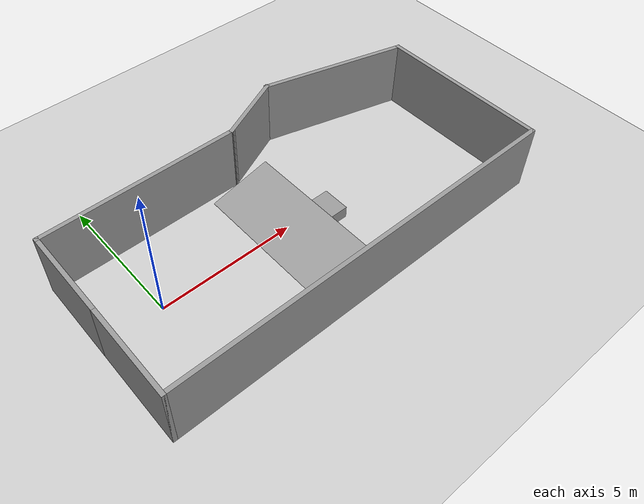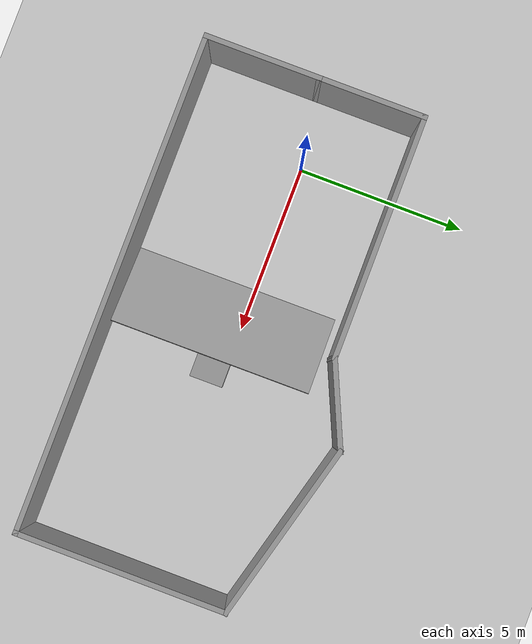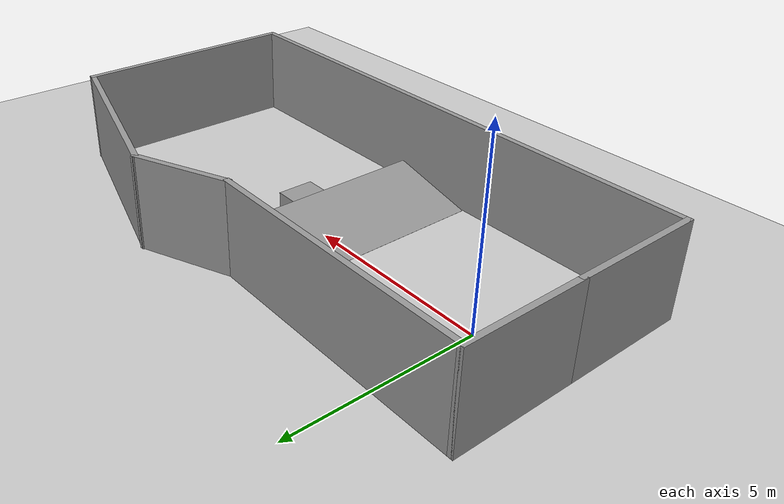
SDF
<sdf version="1.7">
 <world name="default">
  <light name="sun" type="directional">
   <pose>0 0 10 0 -0 0</pose>
   <diffuse>0.8 0.8 0.8 1</diffuse>
   <specular>0.2 0.2 0.2 1</specular>
   <attenuation>
    <range>1000</range>
    <constant>0.9</constant>
    <linear>0.01</linear>
    <quadratic>0.001</quadratic>
   </attenuation>
   <direction>-0.5 0.1 -0.9</direction>
   <spot><inner_angle>0</inner_angle><outer_angle>0</outer_angle><falloff>0</falloff></spot>
  </light>
  <model name="ground_plane">
   <static>1</static>
   <link name="link">
    <collision name="collision">
     <geometry><plane><normal>0 0 1</normal><size>100 100</size></plane></geometry>
     <surface><friction><ode><mu>100</mu><mu2>50</mu2></ode></friction></surface>
    </collision>
    <visual name="visual">
     <cast_shadows>0</cast_shadows>
     <geometry><plane><normal>0 0 1</normal><size>100 100</size></plane></geometry>
     <material>
      <script><uri>file://media/materials/scripts/gazebo.material</uri><name>Gazebo/Grey</name></script>
     </material>
    </visual>
   </link>
  </model>
  <gravity>0 0 -9.8</gravity>
  <magnetic_field>6e-06 2.3e-05 -4.2e-05</magnetic_field>
  <atmosphere type="adiabatic"/>
  <physics type="ode">
   <max_step_size>0.001</max_step_size>
   <real_time_factor>1</real_time_factor>
   <real_time_update_rate>1000</real_time_update_rate>
  </physics>
  <scene><ambient>0.4 0.4 0.4 1</ambient><background>0.7 0.7 0.7 1</background><shadows>1</shadows></scene>
  <audio><device>default</device></audio>
  <spherical_coordinates>
   <surface_model>EARTH_WGS84</surface_model>
   <latitude_deg>0</latitude_deg>
   <longitude_deg>0</longitude_deg>
   <elevation>0</elevation>
   <heading_deg>0</heading_deg>
  </spherical_coordinates>
  <model name="testwall">
   <pose>5.16598 0.0615 0 0 -0 0</pose>
   <link name="Wall_0">
    <collision name="Wall_0_Collision">
     <geometry><box><size>3.25 0.15 2.5</size></box></geometry>
     <pose>0 0 1.25 0 -0 0</pose>
    </collision>
    <visual name="Wall_0_Visual">
     <pose>0 0 1.25 0 -0 0</pose>
     <geometry><box><size>3.25 0.15 2.5</size></box></geometry>
     <material>
      <script><uri>file://media/materials/scripts/gazebo.material</uri><name>Gazebo/Grey</name></script>
      <ambient>1 1 1 1</ambient>
     </material>
     <meta><layer>0</layer></meta>
    </visual>
    <pose>-7.30843 1.14567 0 0 -0 1.5708</pose>
   </link>
   <link name="Wall_1">
    <collision name="Wall_1_Collision">
     <geometry><box><size>7.25 0.15 2.5</size></box></geometry>
     <pose>0 0 1.25 0 -0 0</pose>
    </collision>
    <visual name="Wall_1_Visual">
     <pose>0 0 1.25 0 -0 0</pose>
     <geometry><box><size>7.25 0.15 2.5</size></box></geometry>
     <material>
      <script><uri>file://media/materials/scripts/gazebo.material</uri><name>Gazebo/Grey</name></script>
      <ambient>1 1 1 1</ambient>
     </material>
     <meta><layer>0</layer></meta>
    </visual>
    <pose>-3.75843 2.69567 0 0 -0 0</pose>
   </link>
   <link name="Wall_5">
    <collision name="Wall_5_Collision">
     <geometry><box><size>3.5 0.15 2.5</size></box></geometry>
     <pose>0 0 1.25 0 -0 0</pose>
    </collision>
    <visual name="Wall_5_Visual">
     <pose>0 0 1.25 0 -0 0</pose>
     <geometry><box><size>3.5 0.15 2.5</size></box></geometry>
     <material>
      <script><uri>file://media/materials/scripts/gazebo.material</uri><name>Gazebo/Grey</name></script>
      <ambient>1 1 1 1</ambient>
     </material>
     <meta><layer>0</layer></meta>
    </visual>
    <pose>-7.30843 -2.07933 0 0 -0 -1.5708</pose>
   </link>
   <link name="Wall_6">
    <collision name="Wall_6_Collision">
     <geometry><box><size>14.75 0.15 2.5</size></box></geometry>
     <pose>0 0 1.25 0 -0 0</pose>
    </collision>
    <visual name="Wall_6_Visual">
     <pose>0 0 1.25 0 -0 0</pose>
     <geometry><box><size>14.75 0.15 2.5</size></box></geometry>
     <material>
      <script><uri>file://media/materials/scripts/gazebo.material</uri><name>Gazebo/Grey</name></script>
      <ambient>1 1 1 1</ambient>
     </material>
     <meta><layer>0</layer></meta>
    </visual>
    <pose>-0.008428 -3.75433 0 0 -0 0</pose>
   </link>
   <link name="Wall_7">
    <collision name="Wall_7_Collision">
     <geometry><box><size>6.25 0.15 2.5</size></box></geometry>
     <pose>0 0 1.25 0 -0 0</pose>
    </collision>
    <visual name="Wall_7_Visual">
     <pose>0 0 1.25 0 -0 0</pose>
     <geometry><box><size>6.25 0.15 2.5</size></box></geometry>
     <material>
      <script><uri>file://media/materials/scripts/gazebo.material</uri><name>Gazebo/Grey</name></script>
      <ambient>1 1 1 1</ambient>
     </material>
     <meta><layer>0</layer></meta>
    </visual>
    <pose>7.29157 -0.704326 0 0 -0 1.5708</pose>
   </link>
   <link name="Wall_8">
    <collision name="Wall_8_Collision">
     <geometry><box><size>5.5 0.15 2.5</size></box></geometry>
     <pose>0 0 1.25 0 -0 0</pose>
    </collision>
    <visual name="Wall_8_Visual">
     <pose>0 0 1.25 0 -0 0</pose>
     <geometry><box><size>5.5 0.15 2.5</size></box></geometry>
     <material>
      <script><uri>file://media/materials/scripts/gazebo.material</uri><name>Gazebo/Grey</name></script>
      <ambient>1 1 1 1</ambient>
     </material>
     <meta><layer>0</layer></meta>
    </visual>
    <pose>4.70772 3.03802 0 0 -0 2.87979</pose>
   </link>
   <link name="Wall_9">
    <collision name="Wall_9_Collision">
     <geometry><box><size>2.7015 0.15 2.5</size></box></geometry>
     <pose>0 0 1.25 0 -0 0</pose>
    </collision>
    <visual name="Wall_9_Visual">
     <pose>0 0 1.25 0 -0 0</pose>
     <geometry><box><size>2.7015 0.15 2.5</size></box></geometry>
     <material>
      <script><uri>file://media/materials/scripts/gazebo.material</uri><name>Gazebo/Grey</name></script>
      <ambient>1 1 1 1</ambient>
     </material>
     <meta><layer>0</layer></meta>
    </visual>
    <pose>0.95772 3.21301 0 0 -0 -2.72405</pose>
   </link>
   <static>1</static>
  </model>
  <model name="unit_box">
   <pose>6.31684 -0.412443 0.231858 0 -8.9e-05 0.003111</pose>
   <link name="link">
    <inertial>
     <mass>1</mass>
     <inertia>
      <ixx>0.166667</ixx>
      <ixy>0</ixy>
      <ixz>0</ixz>
      <iyy>0.166667</iyy>
      <iyz>0</iyz>
      <izz>0.166667</izz>
     </inertia>
    </inertial>
    <collision name="collision"><geometry><box><size>1 1 0.463817</size></box></geometry></collision>
    <visual name="visual">
     <geometry><box><size>1 1 0.463817</size></box></geometry>
     <material>
      <script><name>Gazebo/Grey</name><uri>file://media/materials/scripts/gazebo.material</uri></script>
     </material>
    </visual>
   </link>
  </model>
  <model name="unit_box_0">
   <pose>4.95759 -0.560997 0.234328 0 -0.237326 0.003111</pose>
   <link name="link">
    <inertial>
     <mass>1</mass>
     <inertia>
      <ixx>0.166667</ixx>
      <ixy>0</ixy>
      <ixz>0</ixz>
      <iyy>0.166667</iyy>
      <iyz>0</iyz>
      <izz>0.166667</izz>
     </inertia>
    </inertial>
    <collision name="collision"><geometry><box><size>2.37692 6.10629 0.065042</size></box></geometry></collision>
    <visual name="visual">
     <geometry><box><size>2.37692 6.10629 0.065042</size></box></geometry>
     <material>
      <script><name>Gazebo/Grey</name><uri>file://media/materials/scripts/gazebo.material</uri></script>
     </material>
    </visual>
   </link>
  </model>
 </world>
</sdf>
